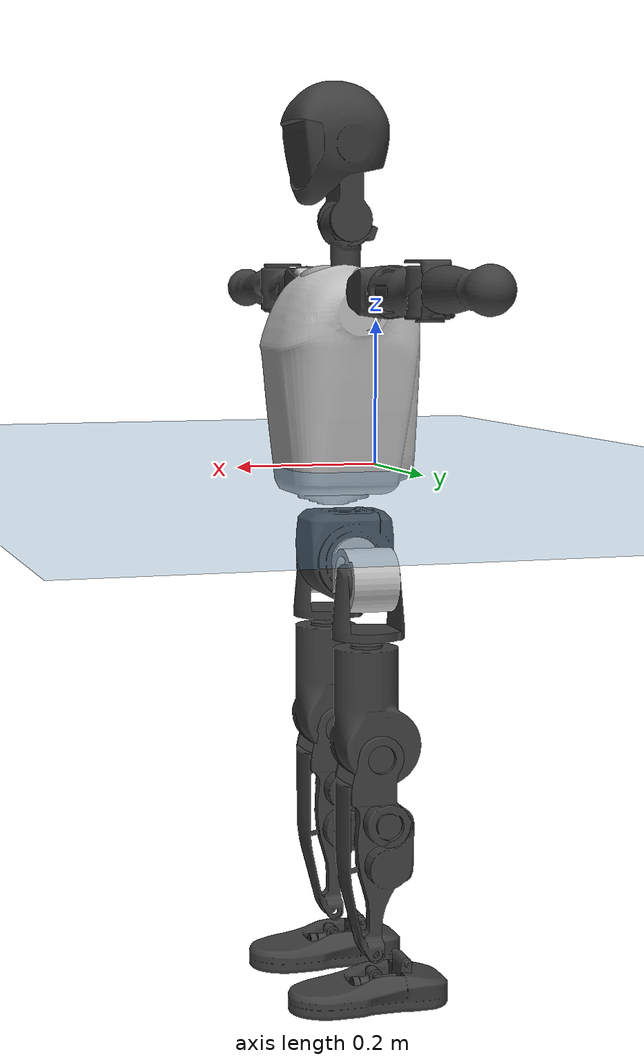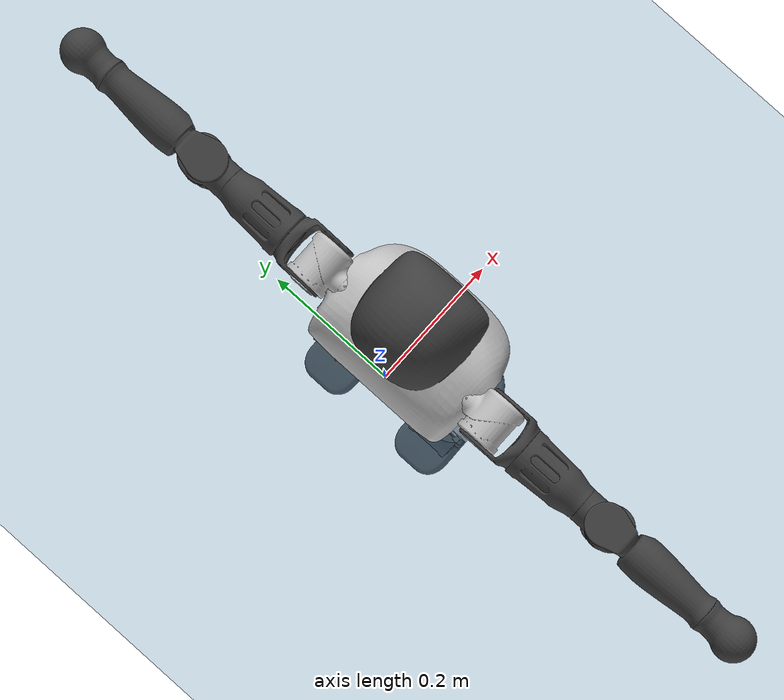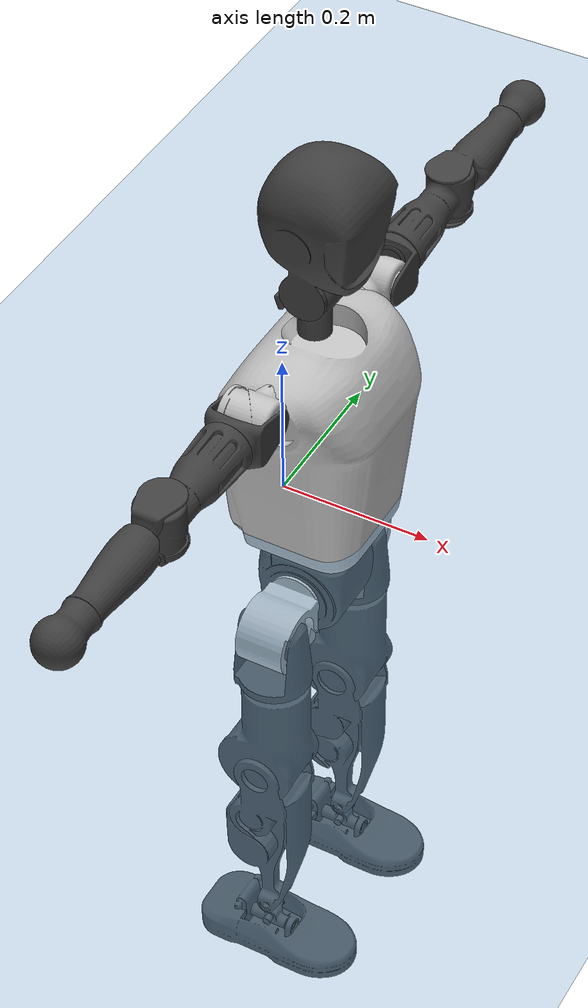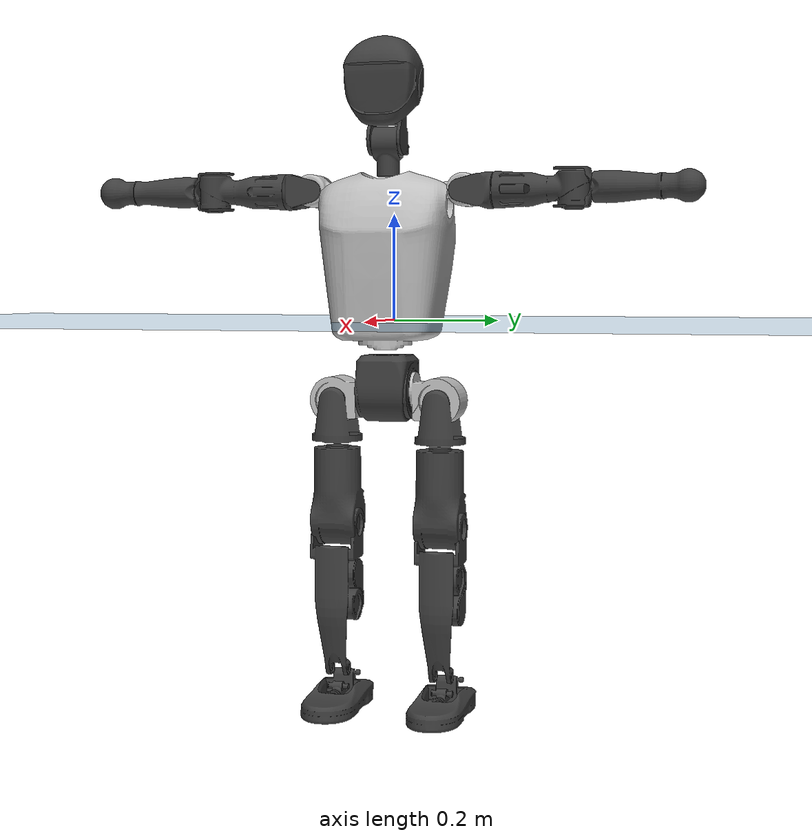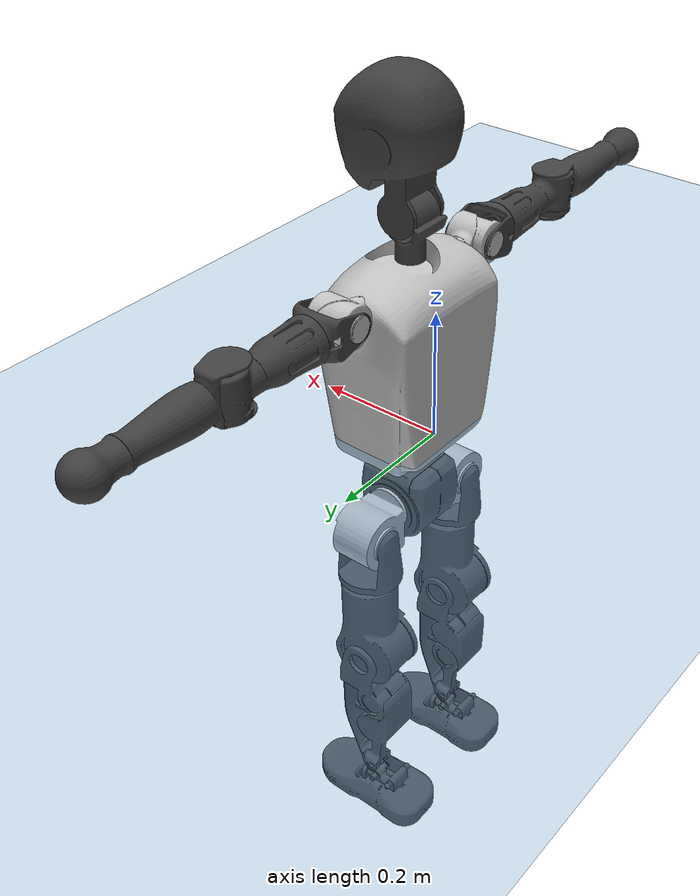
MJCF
<mujoco model="T1">
  <compiler angle="radian" assetdir="assets" balanceinertia="true" inertiafromgeom="false"/>

  <option timestep="0.005" density="1.2" viscosity="2e-05"/>

  <size nkey="1"/>

  <visual>
    <quality shadowsize="8192"/>
    <map shadowclip="0.5"/>
  </visual>

  <default>
    <default class="/">
      <joint armature="0.01" damping="0.01" frictionloss="0.1"/>
      <geom contype="0" conaffinity="0" group="1" solref="-1000 -80"/>
      <site size="0.01 0.005 0.005" group="5"/>
      <general forcelimited="true" biastype="affine" gainprm="25" biasprm="0 -25 -0.6"/>
      <default class="t1">
        <geom rgba="0.25 0.25 0.25 1"/>
        <default class="visual">
          <geom type="mesh" group="2"/>
        </default>
        <default class="collision">
          <geom group="3"/>
        </default>
        <default class="foot">
          <geom size="0.1115 0.05 0.015" type="box" condim="6" group="4" priority="1" solimp="0.015 1 0.015"/>
        </default>
        <default class="reward_collision_sphere">
          <geom group="5" rgba="1 0 0 1"/>
        </default>
      </default>
    </default>
  </default>

  <asset>
    <texture type="skybox" colorspace="auto" name="//unnamed_texture_0" builtin="gradient" rgb1="0.95 0.95 0.95" rgb2="0.95 0.95 0.95" width="100" height="600"/>
    <texture type="2d" colorspace="auto" name="texplane" builtin="checker" rgb1="0.345 0.575 0.748" rgb2="0.345 0.575 0.748" markrgb="1 1 1" width="512" height="512"/>
    <material name="MatPlane" class="/" texture="texplane" texuniform="true" texrepeat="2 2" specular="0.9"/>
    <mesh name="Trunk" class="/" file="Trunk.stl"/>
    <mesh name="H1" class="/" file="H1.stl"/>
    <mesh name="H2" class="/" file="H2.stl"/>
    <mesh name="AL1" class="/" file="AL1.stl"/>
    <mesh name="AL2" class="/" file="AL2.stl"/>
    <mesh name="AL3" class="/" file="AL3.stl"/>
    <mesh name="left_hand_link" class="/" file="left_hand_link.stl"/>
    <mesh name="AR1" class="/" file="AR1.stl"/>
    <mesh name="AR2" class="/" file="AR2.stl"/>
    <mesh name="AR3" class="/" file="AR3.stl"/>
    <mesh name="right_hand_link" class="/" file="right_hand_link.stl"/>
    <mesh name="Waist" class="/" file="Waist.stl"/>
    <mesh name="Hip_Pitch_Left" class="/" file="Hip_Pitch_Left.stl"/>
    <mesh name="Hip_Roll_Left" class="/" file="Hip_Roll_Left.stl"/>
    <mesh name="Hip_Yaw_Left" class="/" file="Hip_Yaw_Left.stl"/>
    <mesh name="Shank_Left" class="/" file="Shank_Left.stl"/>
    <mesh name="Ankle_Cross_Left" class="/" file="Ankle_Cross_Left.stl"/>
    <mesh name="left_foot_link" class="/" file="left_foot_link.stl"/>
    <mesh name="Hip_Pitch_Right" class="/" file="Hip_Pitch_Right.stl"/>
    <mesh name="Hip_Roll_Right" class="/" file="Hip_Roll_Right.stl"/>
    <mesh name="Hip_Yaw_Right" class="/" file="Hip_Yaw_Right.stl"/>
    <mesh name="Shank_Right" class="/" file="Shank_Right.stl"/>
    <mesh name="Ankle_Cross_Right" class="/" file="Ankle_Cross_Right.stl"/>
    <mesh name="right_foot_link" class="/" file="right_foot_link.stl"/>
  </asset>

  <worldbody>
    <geom name="floor" class="/" size="100 100 0.125" type="plane" group="0" material="MatPlane"/>
    <light name="toplight_shadow" class="/" pos="0 0 5" dir="0.0990148 0.0990148 -0.990148" type="directional" ambient="0.04 0.04 0.04" diffuse="0.55 0.55 0.55" specular="0.12 0.12 0.12"/>
    <light name="toplight_fill" class="/" pos="0 0 5" dir="0.0990148 0.0990148 -0.990148" type="directional" castshadow="false" ambient="0.04 0.04 0.04" diffuse="0.3 0.3 0.3" specular="0.08 0.08 0.08"/>
    <body name="trunk" childclass="t1" pos="-4.99681e-05 2.00887e-05 -0.00191562" quat="0.999999 -0.000487301 -0.000795622 -0.000550305">
      <inertial pos="0.0395755 -0.000460702 0.11762" quat="0.999962 9.19105e-05 -0.00874252 -6.47319e-05" mass="9.05114" diaginertia="0.0179253 0.0561934 0.0943424"/>
      <joint name="//unnamed_joint_0" type="free" armature="0" damping="0" frictionloss="0"/>
      <geom name="//unnamed_geom_1" class="visual" rgba="0.76 0.76 0.76 1" mesh="Trunk"/>
      <geom name="//unnamed_geom_2" class="collision" size="0.0695861 0.0927814 0.139172" pos="0.0434116 0 0.133779" type="box"/>
      <geom name="//unnamed_geom_3" class="reward_collision_sphere" size="0.106699" pos="0.0434116 0 0.111482"/>
      <geom name="//unnamed_geom_4" class="reward_collision_sphere" size="0.0139172" pos="0.0434116 0.0803331 0"/>
      <geom name="//unnamed_geom_5" class="reward_collision_sphere" size="0.0139172" pos="0.0434116 -0.0803331 0"/>
      <geom name="//unnamed_geom_6" class="reward_collision_sphere" size="0.0139172" pos="0.0434116 0.101125 0.200668"/>
      <geom name="//unnamed_geom_7" class="reward_collision_sphere" size="0.0139172" pos="0.0434116 -0.101125 0.200668"/>
      <site name="imu" pos="-0.00927109 -0.00265777 0.00149793" size="0.00927814"/>
      <camera name="track" pos="0 -1.89019 0" quat="0.707107 0.707107 0 0" mode="trackcom"/>
      <camera name="ego_camera" pos="0.0882702 0 0.468225" quat="-0.5 -0.5 0.5 0.5"/>
      <body name="H1" pos="0.0445451 -0.00023911 0.271071" quat="1 0.000714101 0.000410041 -0.000381012">
        <inertial pos="-0.000338412 -0.00237579 0.0632829" quat="0.765146 -0.0135319 0.00219508 0.643711" mass="0.353889" diaginertia="4.7484e-05 0.000171294 0.000256856"/>
        <joint name="AAHead_yaw" pos="0 0 0" axis="0.00147139 -0.00232386 0.999996" range="-1.61648 1.58756" armature="0.00951948" damping="0.0126881" frictionloss="0.0880889"/>
        <geom name="//unnamed_geom_8" class="visual" mesh="H1"/>
        <body name="H2" pos="0.000802253 -0.0009306 0.0693786" quat="0.999999 0.00106201 8.04754e-05 3.3672e-05">
          <inertial pos="0.00532025 0.000954292 0.110113" quat="0.988477 0.105779 -0.0745391 -0.0785431" mass="0.489875" diaginertia="0.00040086 0.00143605 0.0029659"/>
          <joint name="Head_pitch" pos="0 0 0" axis="-0.00684452 -0.999955 -0.00652331" range="-1.23382 0.388723" armature="0.0099451" damping="0.0160971" frictionloss="0.102321"/>
          <geom name="//unnamed_geom_9" class="visual" mesh="H2"/>
          <geom name="//unnamed_geom_10" class="collision" size="0.0742252" pos="0.00723526 0 0.12263"/>
          <geom name="//unnamed_geom_11" class="reward_collision_sphere" size="0.0835033" pos="0.0144705 0 0.111482"/>
        </body>
      </body>
      <body name="AL1" pos="0.0446191 0.101355 0.244478" quat="1 -0.000206576 0.000583484 -0.000248047">
        <inertial pos="-0.00279807 0.04321 0.000724232" quat="0.503237 0.494947 -0.503345 0.498421" mass="0.424326" diaginertia="0.000269031 0.00100612 0.000502125"/>
        <joint name="Left_Shoulder_Pitch" pos="0 0 0" axis="-8.48478e-05 1 0.000235514" range="-3.30869 1.21962" armature="0.00949717" damping="0.00537264" frictionloss="0.0972683"/>
        <geom name="//unnamed_geom_12" class="visual" rgba="0.76 0.76 0.76 1" mesh="AL1"/>
        <body name="AL2" pos="0.00152701 0.043875 -0.00179779" quat="1 0.000566926 0.00055077 0.000225395">
          <inertial pos="0.0037098 0.0360016 -0.00171567" quat="0.484757 0.511108 -0.488461 0.514962" mass="0.128606" diaginertia="7.99192e-05 0.000259633 0.000300143"/>
          <joint name="Left_Shoulder_Roll" pos="0 0 0" axis="-0.999949 -0.00442633 -0.00911383" range="-1.57916 1.75147" armature="0.00938647" damping="0.00596909" frictionloss="0.0839835"/>
          <geom name="//unnamed_geom_13" class="visual" mesh="AL2"/>
          <body name="AL3" pos="-0.00123246 0.0577106 0.000729004" quat="1 0.000122197 0.000304416 -3.89678e-05">
            <inertial pos="5.40173e-05 0.0806841 0.0012353" quat="0.706438 0.707774 -0.000793079 -0.000765934" mass="0.811368" diaginertia="0.00252377 0.00958438 0.00107729"/>
            <joint name="Left_Elbow_Pitch" pos="0 0 0" axis="0.00465009 -0.999969 0.00636274" range="-2.27524 2.27134" armature="0.00951848" damping="0.0123358" frictionloss="0.0883416"/>
            <geom name="//unnamed_geom_14" class="visual" mesh="AL3"/>
            <geom name="//unnamed_geom_15" class="collision" size="0.0278344 0.0695861" pos="0 0.0472547 0" quat="0.707105 0.707108 0 0" type="cylinder"/>
            <geom name="//unnamed_geom_16" class="reward_collision_sphere" size="0.0334013"/>
            <body name="left_hand_link" pos="0.000358593 0.137446 0.00294287" quat="1 -4.18275e-05 -0.00052861 1.4928e-05">
              <inertial pos="-8.41512e-05 0.102845 0.000955855" quat="0.707743 0.70647 -0.000215387 -0.000132639" mass="0.271444" diaginertia="0.00161837 0.00630805 0.000380362"/>
              <joint name="Left_Elbow_Yaw" pos="0 0 0" axis="-0.0111514 0.00120785 0.999937" range="-2.46209 0.00248272" armature="0.00919859" damping="0.0132439" frictionloss="0.0924837"/>
              <geom name="//unnamed_geom_17" class="visual" mesh="left_hand_link"/>
              <geom name="//unnamed_geom_18" class="collision" size="0.0278344 0.0811838" pos="0 0.122862 0" quat="0.707105 0.707108 0 0" type="cylinder"/>
              <geom name="//unnamed_geom_19" class="reward_collision_sphere" size="0.0463907"/>
              <geom name="//unnamed_geom_20" class="reward_collision_sphere" size="0.0324735" pos="0 0.10396 0"/>
              <geom name="//unnamed_geom_21" class="reward_collision_sphere" size="0.0324735" pos="0 0.203195 0"/>
            </body>
          </body>
        </body>
      </body>
      <body name="AR1" pos="0.0420007 -0.099368 0.245445" quat="0.999999 8.63764e-05 0.000613662 0.000807034">
        <inertial pos="-0.00154123 -0.0419174 -0.000676901" quat="0.501114 0.498084 -0.504692 0.496068" mass="0.428288" diaginertia="0.000270906 0.000985704 0.000512538"/>
        <joint name="Right_Shoulder_Pitch" pos="0 0 0" axis="-0.0033549 -0.999991 0.00243001" range="-1.22686 3.30973" armature="0.0092689" damping="0.00209754" frictionloss="0.0951003"/>
        <geom name="//unnamed_geom_22" class="visual" rgba="0.76 0.76 0.76 1" mesh="AR1"/>
        <body name="AR2" pos="-0.000105231 -0.0447247 -0.00148143" quat="1 2.82547e-05 3.65477e-05 6.11945e-05">
          <inertial pos="0.00376539 -0.0358385 0.000760624" quat="0.511367 0.487926 -0.512244 0.487892" mass="0.125655" diaginertia="8.17476e-05 0.000260089 0.000298939"/>
          <joint name="Right_Shoulder_Roll" pos="0 0 0" axis="-0.999997 -0.0022996 9.73253e-05" range="-1.75585 1.56912" armature="0.00945082" damping="0.00177737" frictionloss="0.0993919"/>
          <geom name="//unnamed_geom_23" class="visual" mesh="AR2"/>
          <body name="AR3" pos="-0.00125758 -0.0560879 0.000574437" quat="1 0.000264174 -2.7979e-06 0.000216083">
            <inertial pos="-0.00247111 -0.0808618 -0.000521493" quat="0.706487 0.707726 0.000720563 0.000213574" mass="0.837768" diaginertia="0.00256766 0.00957486 0.00106698"/>
            <joint name="Right_Elbow_Pitch" pos="0 0 0" axis="-0.00313589 0.999994 0.00125807" range="-2.27019 2.28218" armature="0.00885628" damping="0.0114825" frictionloss="0.0903109"/>
            <geom name="//unnamed_geom_24" class="visual" mesh="AR3"/>
            <geom name="//unnamed_geom_25" class="collision" size="0.0278344 0.0695861" pos="0 -0.0472547 0" quat="0.707105 0.707108 0 0" type="cylinder"/>
            <geom name="//unnamed_geom_26" class="reward_collision_sphere" size="0.0334013"/>
            <body name="right_hand_link" pos="-0.000623858 -0.138621 0.00163973" quat="1 8.92846e-05 6.38124e-06 -0.000116347">
              <inertial pos="-0.000333062 -0.102748 0.00177605" quat="0.70914 0.705064 0.00056859 0.00217918" mass="0.263764" diaginertia="0.00161372 0.00627038 0.00037012"/>
              <joint name="Right_Elbow_Yaw" pos="0 0 0" axis="-0.00107993 0.00561466 0.999984" range="-0.0117981 2.43513" armature="0.00961711" damping="0.0113804" frictionloss="0.0949722"/>
              <geom name="//unnamed_geom_27" class="visual" mesh="right_hand_link"/>
              <geom name="//unnamed_geom_28" class="collision" size="0.0278344 0.0811838" pos="0 -0.122862 0" quat="0.707105 0.707108 0 0" type="cylinder"/>
              <geom name="//unnamed_geom_29" class="reward_collision_sphere" size="0.0463907"/>
              <geom name="//unnamed_geom_30" class="reward_collision_sphere" size="0.0324735" pos="0 -0.10396 0"/>
              <geom name="//unnamed_geom_31" class="reward_collision_sphere" size="0.0324735" pos="0 -0.203195 0"/>
            </body>
          </body>
        </body>
      </body>
      <body name="Waist" pos="0.0455551 -0.000115733 -0.128711" quat="1 -0.000130137 8.45694e-05 7.58597e-05">
        <inertial pos="0.00128033 -0.000685967 0.00724079" quat="0.983694 0.00134166 -0.179825 0.00272795" mass="2.04964" diaginertia="0.00106241 0.00406599 0.00816332"/>
        <joint name="Waist" pos="0 0 0" axis="0.00197376 -0.00395518 0.99999" range="-1.58058 1.55794" armature="0.00906443" damping="0" frictionloss="0.0918921"/>
        <geom name="//unnamed_geom_32" class="visual" mesh="Waist"/>
        <body name="Hip_Pitch_Left" pos="0.000417074 0.102109 0.00130112" quat="1 3.60863e-05 -1.44878e-05 -2.09735e-05">
          <inertial pos="0.000855434 -0.00729636 -0.0225143" quat="0.975187 0.220668 0.0176852 0.00182665" mass="0.831937" diaginertia="0.000357073 0.00110355 0.00215458"/>
          <joint name="Left_Hip_Pitch" pos="0 0 0" axis="-0.00262445 0.999991 -0.00331532" range="-1.77873 1.56844" armature="0.00933668" damping="0.00490212" frictionloss="0.0870978"/>
          <geom name="//unnamed_geom_33" class="visual" rgba="0.76 0.76 0.76 1" mesh="Hip_Pitch_Left"/>
          <body name="Hip_Roll_Left" pos="-0.000323681 -0.000619463 -0.0228819" quat="1 6.05295e-05 0.000227399 1.78095e-05">
            <inertial pos="0.000749711 0.000135517 -0.0596733" quat="0.710042 -0.00493989 -0.00507158 0.704123" mass="0.307318" diaginertia="0.000348604 0.00114615 0.000890023"/>
            <joint name="Left_Hip_Roll" pos="0 0 0" axis="-0.999981 -0.00501191 -0.00347221" range="-1.55968 0.201381" armature="0.00932647" damping="0.0111317" frictionloss="0.0908721"/>
            <geom name="//unnamed_geom_34" class="visual" mesh="Hip_Roll_Left"/>
            <geom name="//unnamed_geom_35" class="reward_collision_sphere" size="0.0510298"/>
            <body name="Hip_Yaw_Left" pos="0.000246775 -0.000425385 -0.0897609" quat="1 7.70239e-05 3.32995e-05 -7.73181e-05">
              <inertial pos="-0.00558859 -0.000563713 -0.1014" quat="0.693897 -0.0324235 -0.0341755 0.718532" mass="1.71889" diaginertia="0.00523022 0.0187866 0.00443717"/>
              <joint name="Left_Hip_Yaw" pos="0 0 0" axis="0.000841512 -0.000639351 -0.999999" range="-0.997571 1.01972" armature="0.00902802" damping="0.00992379" frictionloss="0.0858096"/>
              <geom name="//unnamed_geom_36" class="visual" mesh="Hip_Yaw_Left"/>
              <geom name="//unnamed_geom_37" class="collision" size="0.0463907 0.0742252" type="cylinder"/>
              <body name="Shank_Left" pos="-0.00916211 0.00166647 -0.148869" quat="0.999999 7.63373e-06 -0.000178247 -0.00104123">
                <inertial pos="-0.00503455 -0.00181069 -0.137584" quat="0.997789 0.00230474 -0.0163551 0.0643834" mass="1.37465" diaginertia="0.00690377 0.0256448 0.00318018"/>
                <joint name="Left_Knee_Pitch" pos="0 0 0" axis="0.00152958 0.999999 0.000593571" range="0.0134502 2.33852" armature="0.00949305" damping="0.0134234" frictionloss="0.0850094"/>
                <geom name="//unnamed_geom_38" class="visual" mesh="Shank_Left"/>
                <geom name="//unnamed_geom_39" class="collision" size="0.0463907 0.0695861" pos="0 0 -0.133779" type="cylinder"/>
                <geom name="//unnamed_geom_40" class="reward_collision_sphere" size="0.0603079"/>
                <body name="Ankle_Cross_Left" pos="-0.00230727 0.000749035 -0.313081" quat="1 -1.59176e-05 2.03318e-06 -2.28463e-06">
                  <inertial pos="-0.00205631 -0.000316121 -0.00861015" quat="0.437284 0.556661 0.554228 0.437883" mass="0.0569212" diaginertia="5.74032e-06 1.89994e-05 1.93219e-05"/>
                  <joint name="Left_Ankle_Pitch" pos="0 0 0" axis="0.00171267 0.999999 0.000130931" range="-0.872381 0.320204" armature="0.00928769" damping="0.00604306" frictionloss="0.0943546"/>
                  <geom name="//unnamed_geom_41" class="visual" mesh="Ankle_Cross_Left"/>
                  <body name="left_foot_link" pos="9.91212e-05 7.87625e-05 -0.0139926" quat="1 -2.48977e-05 5.96912e-05 7.82845e-05">
                    <inertial pos="-0.000183874 0.000100697 -0.0078847" quat="0.000636211 0.620755 -0.000205877 0.784004" mass="0.55409" diaginertia="0.000538135 0.00181035 0.00383903"/>
                    <joint name="Left_Ankle_Roll" pos="0 0 0" axis="-0.999999 -0.000871017 -0.000684406" range="-0.448852 0.421994" armature="0.00930298" damping="0.0195946" frictionloss="0.0925399"/>
                    <geom name="//unnamed_geom_42" class="visual" mesh="left_foot_link"/>
                    <geom name="left_foot" class="foot" size="0.108174 0.0509533 0.0139087" pos="0.00723526 0 -0.0167223"/>
                    <geom name="//unnamed_geom_44" class="reward_collision_sphere" size="0.0482464" pos="0.00723526 0 -0.0167223"/>
                    <geom name="//unnamed_geom_45" class="reward_collision_sphere" size="0.0278344" pos="0.068735 -0.0217372 -0.0167223"/>
                    <geom name="//unnamed_geom_46" class="reward_collision_sphere" size="0.0278344" pos="-0.0506468 -0.0217372 -0.0167223"/>
                    <site name="left_foot" class="foot" pos="0.00723526 0 -0.0167223" size="0.00927814"/>
                  </body>
                </body>
              </body>
            </body>
          </body>
        </body>
        <body name="Hip_Pitch_Right" pos="-0.00178131 -0.100264 0.00121701" quat="1 0.000331022 0.000382999 0.000340775">
          <inertial pos="0.000642815 0.00504885 -0.0206409" quat="0.972879 -0.230764 0.0159157 -0.00026906" mass="0.808594" diaginertia="0.000356663 0.00109517 0.00211449"/>
          <joint name="Right_Hip_Pitch" pos="0 0 0" axis="0.00140549 -0.999999 0.000143841" range="-1.57309 1.77017" armature="0.00933267" damping="0.00590716" frictionloss="0.102226"/>
          <geom name="//unnamed_geom_47" class="visual" rgba="0.76 0.76 0.76 1" mesh="Hip_Pitch_Right"/>
          <body name="Hip_Roll_Right" pos="-0.00216706 -0.000767971 -0.021437" quat="1 -0.000121166 4.09224e-05 0.000124646">
            <inertial pos="0.00177068 5.14777e-05 -0.060601" quat="0.706908 -0.00588837 -0.00643683 0.707252" mass="0.307734" diaginertia="0.000335582 0.00112951 0.000875416"/>
            <joint name="Right_Hip_Roll" pos="0 0 0" axis="-0.999998 0.00175803 -0.000117042" stiffness="0.000213258" range="-0.199906 1.58944" armature="0.0094526" damping="0.0133089" frictionloss="0.0978025"/>
            <geom name="//unnamed_geom_48" class="visual" mesh="Hip_Roll_Right"/>
            <geom name="//unnamed_geom_49" class="reward_collision_sphere" size="0.0510298"/>
            <body name="Hip_Yaw_Right" pos="0.00108766 0.000617936 -0.0904501" quat="1 0.000192875 7.60295e-05 -0.00018377">
              <inertial pos="-0.00593832 0.00184003 -0.0997033" quat="0.714452 -0.0315141 -0.0337008 0.698161" mass="1.70689" diaginertia="0.00506523 0.0183483 0.00439828"/>
              <joint name="Right_Hip_Yaw" pos="0 0 0" axis="-0.000160573 0.00212059 -0.999998" stiffness="0.00400931" range="-1.00593 1.00601" armature="0.00922992" damping="0.013209" frictionloss="0.0931576"/>
              <geom name="//unnamed_geom_50" class="visual" mesh="Hip_Yaw_Right"/>
              <geom name="//unnamed_geom_51" class="collision" size="0.0463907 0.0742252" type="cylinder"/>
              <body name="Shank_Right" pos="-0.00895327 -0.00119557 -0.147661" quat="1 -4.86961e-07 -3.12478e-05 3.81761e-05">
                <inertial pos="-0.00686884 -0.00139125 -0.136993" quat="0.999281 -0.00709427 -0.0160348 -0.0336163" mass="1.39715" diaginertia="0.00682565 0.0258797 0.00331271"/>
                <joint name="Right_Knee_Pitch" pos="0 0 0" axis="0.00381928 -0.999993 -0.000124913" range="-2.34414 -0.0356336" armature="0.00918036" damping="0.00557065" frictionloss="0.0914035"/>
                <geom name="//unnamed_geom_52" class="visual" mesh="Shank_Right"/>
                <geom name="//unnamed_geom_53" class="collision" size="0.0463907 0.0695861" pos="0 0 -0.133779" type="cylinder"/>
                <geom name="//unnamed_geom_54" class="reward_collision_sphere" size="0.0603079"/>
                <body name="Ankle_Cross_Right" pos="0.000945059 0.000220977 -0.313806" quat="1 -0.000527859 2.84084e-05 -0.000210814">
                  <inertial pos="-0.00303148 0.000883327 -0.00953037" quat="0.443188 0.549194 0.55164 0.444594" mass="0.0591775" diaginertia="5.79474e-06 1.94591e-05 1.96907e-05"/>
                  <joint name="Right_Ankle_Pitch" pos="0 0 0" axis="-0.000533621 -1 -0.000403341" range="-0.304009 0.867069" armature="0.00930626" damping="0.00310412" frictionloss="0.0933842"/>
                  <geom name="//unnamed_geom_55" class="visual" mesh="Ankle_Cross_Right"/>
                  <body name="right_foot_link" pos="0.00141879 -0.00016533 -0.0135493" quat="1 4.9259e-05 -1.55585e-05 1.69611e-05">
                    <inertial pos="0.00024121 0.000967418 -0.00801429" quat="-0.000523479 0.620443 -0.000495732 0.784251" mass="0.548312" diaginertia="0.000538089 0.00180212 0.00381301"/>
                    <joint name="Right_Ankle_Roll" pos="0 0 0" axis="-1 -0.000242558 -5.94432e-06" range="-0.423069 0.43944" armature="0.00941558" damping="0.0133866" frictionloss="0.103516"/>
                    <geom name="//unnamed_geom_56" class="visual" mesh="right_foot_link"/>
                    <geom name="right_foot" class="foot" size="0.103073 0.0415298 0.0152699" pos="0.00723526 0 -0.0167223"/>
                    <geom name="//unnamed_geom_58" class="reward_collision_sphere" size="0.0371126"/>
                    <geom name="//unnamed_geom_59" class="reward_collision_sphere" size="0.0278344" pos="0.00723526 0 -0.0167223"/>
                    <geom name="//unnamed_geom_60" class="reward_collision_sphere" size="0.0278344" pos="0.068735 0.0217372 -0.0167223"/>
                    <geom name="//unnamed_geom_61" class="reward_collision_sphere" size="0.0278344" pos="-0.0506468 0.0217372 -0.0167223"/>
                    <site name="right_foot" class="foot" pos="0.00723526 0 -0.0167223" size="0.00927814"/>
                  </body>
                </body>
              </body>
            </body>
          </body>
        </body>
      </body>
    </body>
  </worldbody>

  <contact>
    <pair class="/" geom1="floor" geom2="left_foot" name="//unnamed_contact_0"/>
    <pair class="/" geom1="floor" geom2="right_foot" name="//unnamed_contact_1"/>
  </contact>

  <actuator>
    <general name="AAHead_yaw" class="/" joint="AAHead_yaw" forcerange="-6.54371 6.54371" gainprm="23.5875" biasprm="0 -23.5875 -0.542116"/>
    <general name="Head_pitch" class="/" joint="Head_pitch" forcerange="-6.28691 6.28691" gainprm="23.5875" biasprm="0 -23.5875 -0.542116"/>
    <general name="Left_Shoulder_Pitch" class="/" joint="Left_Shoulder_Pitch" forcerange="-17.1836 17.1836" gainprm="23.5875" biasprm="0 -23.5875 -0.542116"/>
    <general name="Left_Shoulder_Roll" class="/" joint="Left_Shoulder_Roll" forcerange="-16.1968 16.1968" gainprm="23.5875" biasprm="0 -23.5875 -0.542116"/>
    <general name="Left_Elbow_Pitch" class="/" joint="Left_Elbow_Pitch" forcerange="-15.9505 15.9505" gainprm="23.5875" biasprm="0 -23.5875 -0.542116"/>
    <general name="Left_Elbow_Yaw" class="/" joint="Left_Elbow_Yaw" forcerange="-16.7527 16.7527" gainprm="23.5875" biasprm="0 -23.5875 -0.542116"/>
    <general name="Right_Shoulder_Pitch" class="/" joint="Right_Shoulder_Pitch" forcerange="-16.5255 16.5255" gainprm="23.5875" biasprm="0 -23.5875 -0.542116"/>
    <general name="Right_Shoulder_Roll" class="/" joint="Right_Shoulder_Roll" forcerange="-16.5611 16.5611" gainprm="23.5875" biasprm="0 -23.5875 -0.542116"/>
    <general name="Right_Elbow_Pitch" class="/" joint="Right_Elbow_Pitch" forcerange="-16.7838 16.7838" gainprm="23.5875" biasprm="0 -23.5875 -0.542116"/>
    <general name="Right_Elbow_Yaw" class="/" joint="Right_Elbow_Yaw" forcerange="-16.8801 16.8801" gainprm="23.5875" biasprm="0 -23.5875 -0.542116"/>
    <general name="Waist" class="/" joint="Waist" forcerange="-28.0936 28.0936" gainprm="23.5875" biasprm="0 -23.5875 -0.542116"/>
    <general name="Left_Hip_Pitch" class="/" joint="Left_Hip_Pitch" forcerange="-42.0858 42.0858" gainprm="23.5875" biasprm="0 -23.5875 -0.542116"/>
    <general name="Left_Hip_Roll" class="/" joint="Left_Hip_Roll" forcerange="-29.9657 29.9657" gainprm="23.5875" biasprm="0 -23.5875 -0.542116"/>
    <general name="Left_Hip_Yaw" class="/" joint="Left_Hip_Yaw" forcerange="-27.9927 27.9927" gainprm="23.5875" biasprm="0 -23.5875 -0.542116"/>
    <general name="Left_Knee_Pitch" class="/" joint="Left_Knee_Pitch" forcerange="-59.1406 59.1406" gainprm="23.5875" biasprm="0 -23.5875 -0.542116"/>
    <general name="Left_Ankle_Pitch" class="/" joint="Left_Ankle_Pitch" forcerange="-18.7261 18.7261" gainprm="23.5875" biasprm="0 -23.5875 -0.542116"/>
    <general name="Left_Ankle_Roll" class="/" joint="Left_Ankle_Roll" forcerange="-14.1822 14.1822" gainprm="23.5875" biasprm="0 -23.5875 -0.542116"/>
    <general name="Right_Hip_Pitch" class="/" joint="Right_Hip_Pitch" forcerange="-39.474 39.474" gainprm="23.5875" biasprm="0 -23.5875 -0.542116"/>
    <general name="Right_Hip_Roll" class="/" joint="Right_Hip_Roll" forcerange="-27.3754 27.3754" gainprm="23.5875" biasprm="0 -23.5875 -0.542116"/>
    <general name="Right_Hip_Yaw" class="/" joint="Right_Hip_Yaw" forcerange="-27.8819 27.8819" gainprm="23.5875" biasprm="0 -23.5875 -0.542116"/>
    <general name="Right_Knee_Pitch" class="/" joint="Right_Knee_Pitch" forcerange="-55.4687 55.4687" gainprm="23.5875" biasprm="0 -23.5875 -0.542116"/>
    <general name="Right_Ankle_Pitch" class="/" joint="Right_Ankle_Pitch" forcerange="-18.7648 18.7648" gainprm="23.5875" biasprm="0 -23.5875 -0.542116"/>
    <general name="Right_Ankle_Roll" class="/" joint="Right_Ankle_Roll" forcerange="-13.6721 13.6721" gainprm="23.5875" biasprm="0 -23.5875 -0.542116"/>
  </actuator>

  <sensor>
    <gyro site="imu" name="imu_angular_velocity"/>
    <velocimeter site="imu" name="imu_linear_velocity"/>
    <framelinvel objtype="site" objname="left_foot" name="left_foot_global_linear_velocity"/>
    <framelinvel objtype="site" objname="right_foot" name="right_foot_global_linear_velocity"/>
  </sensor>

  <keyframe>
    <key name="home" qpos="0 0 0.6385 1 0 0 0 0 0 0 1.4 0 -0.4 0 -1.4 0 0.4 0 -0.4 0 0 0.8 -0.4 0 0.4 0 0 -0.8 0.4 0"/>
  </keyframe>
</mujoco>
